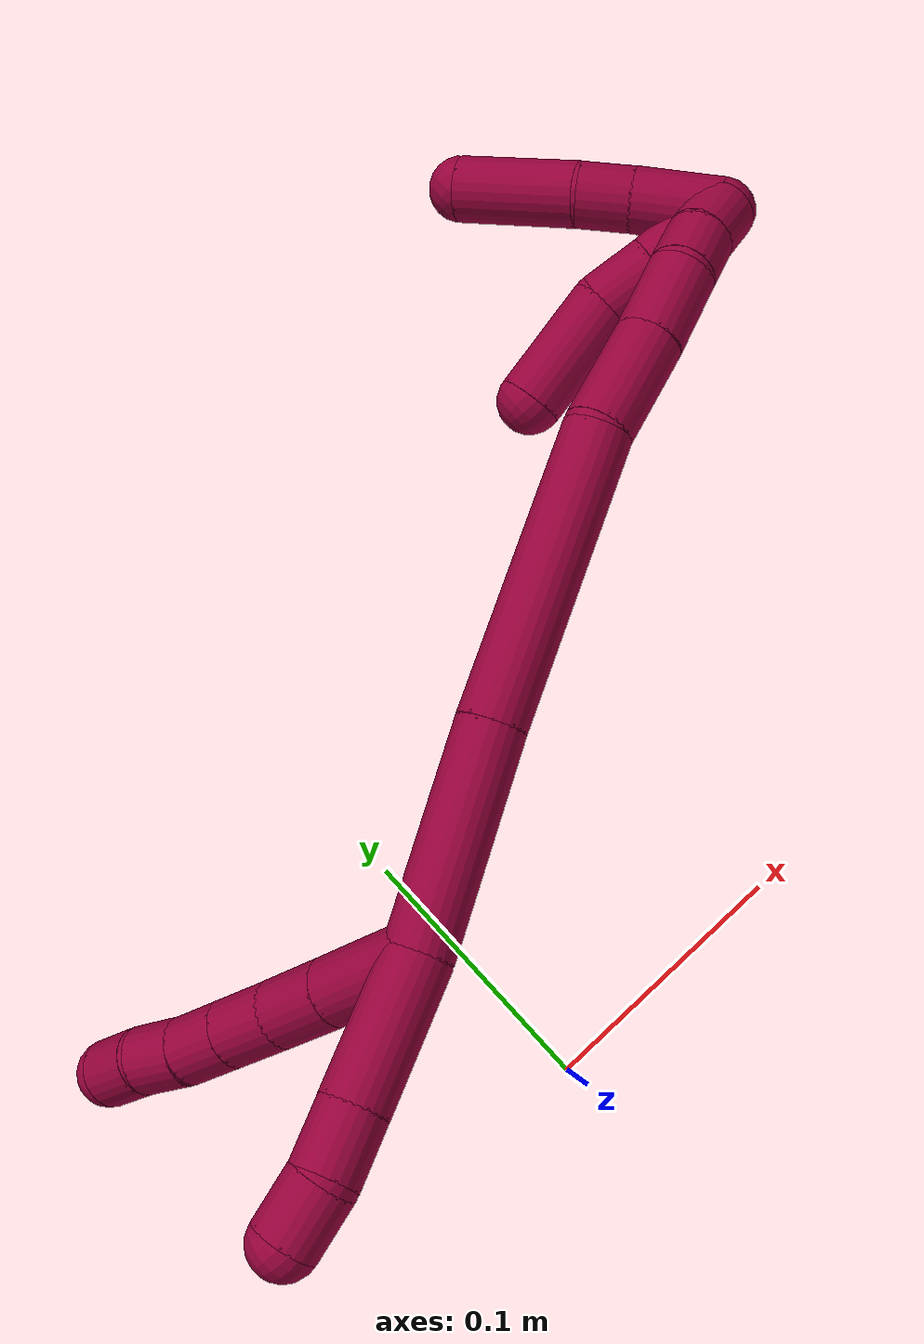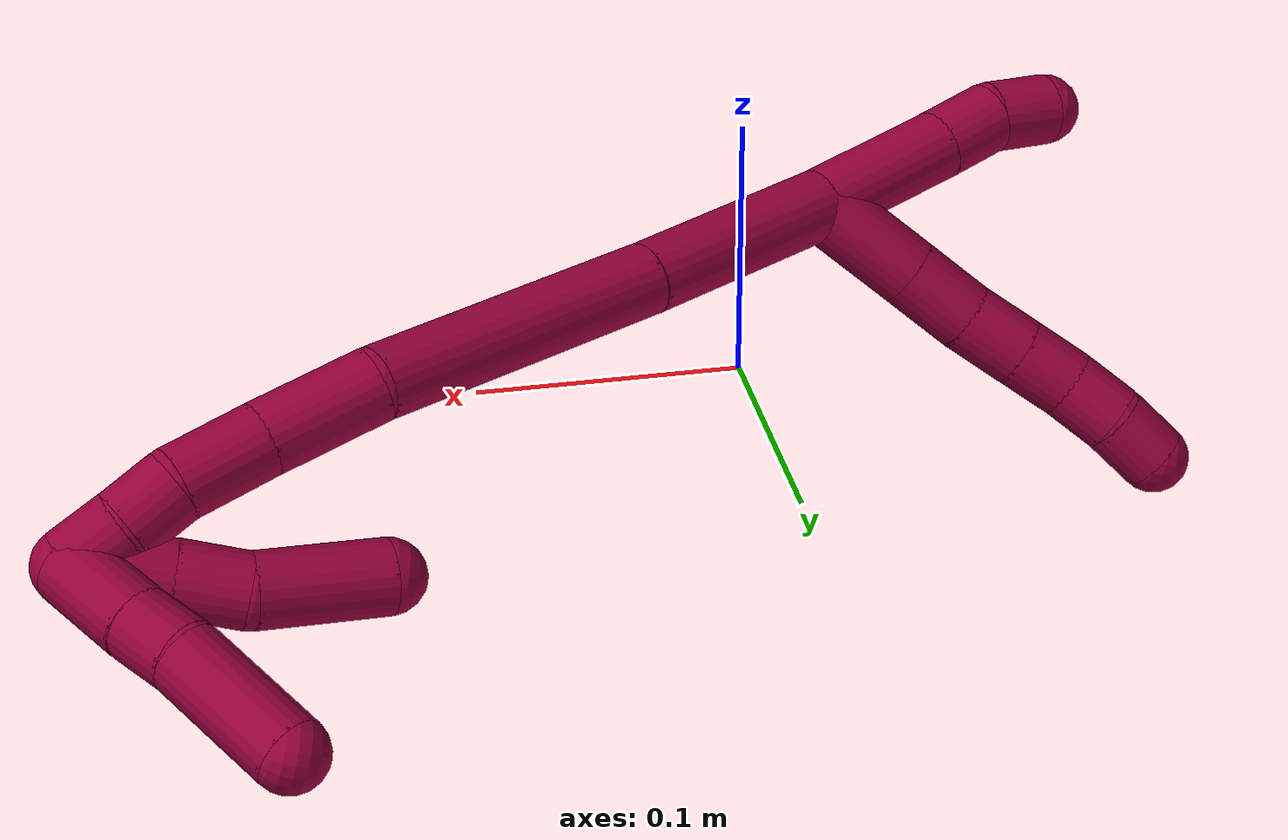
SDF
<sdf version="1.7">
 <world name="default">
  <model name="8">
   <static>0</static>
   <link name="8">
    <collision name="collision-cylinder-e_1_2_8">
     <pose>0.002793 -0.008185 -0.017618 2.70669 0.142807 0.626155</pose>
     <geometry><cylinder><radius>0.0125</radius><length>0.039252</length></cylinder></geometry>
     <surface>
      <friction><ode><mu>1.16</mu><mu2>1.16</mu2><slip1>0</slip1><slip2>0</slip2></ode></friction>
      <contact><ode><kp>1e+06</kp><kd>1</kd><max_vel>0</max_vel><min_depth>0.001</min_depth></ode></contact>
     </surface>
    </collision>
    <visual name="visual-cylinder-e_1_2_8">
     <pose>0.002793 -0.008185 -0.017618 2.70669 0.142807 0.626155</pose>
     <geometry><cylinder><radius>0.0125</radius><length>0.039252</length></cylinder></geometry>
     <material><ambient>0.584314 0 0.227451 1</ambient></material>
    </visual>
    <collision name="collision-cylinder-e_2_8_9">
     <pose>0.007468 -0.021819 -0.046798 2.70111 0.146186 0.632219</pose>
     <geometry><cylinder><radius>0.0125</radius><length>0.02584</length></cylinder></geometry>
     <surface>
      <friction><ode><mu>1.16</mu><mu2>1.16</mu2><slip1>0</slip1><slip2>0</slip2></ode></friction>
      <contact><ode><kp>1e+06</kp><kd>1</kd><max_vel>0</max_vel><min_depth>0.001</min_depth></ode></contact>
     </surface>
    </collision>
    <visual name="visual-cylinder-e_2_8_9">
     <pose>0.007468 -0.021819 -0.046798 2.70111 0.146186 0.632219</pose>
     <geometry><cylinder><radius>0.0125</radius><length>0.02584</length></cylinder></geometry>
     <material><ambient>0.584314 0 0.227451 1</ambient></material>
    </visual>
    <collision name="collision-cylinder-e_3_9_10">
     <pose>0.011588 -0.031319 -0.068866 2.7737 0.196135 0.972856</pose>
     <geometry><cylinder><radius>0.0125</radius><length>0.022959</length></cylinder></geometry>
     <surface>
      <friction><ode><mu>1.16</mu><mu2>1.16</mu2><slip1>0</slip1><slip2>0</slip2></ode></friction>
      <contact><ode><kp>1e+06</kp><kd>1</kd><max_vel>0</max_vel><min_depth>0.001</min_depth></ode></contact>
     </surface>
    </collision>
    <visual name="visual-cylinder-e_3_9_10">
     <pose>0.011588 -0.031319 -0.068866 2.7737 0.196135 0.972856</pose>
     <geometry><cylinder><radius>0.0125</radius><length>0.022959</length></cylinder></geometry>
     <material><ambient>0.584314 0 0.227451 1</ambient></material>
    </visual>
    <collision name="collision-cylinder-e_4_10_11">
     <pose>0.015871 -0.039061 -0.088979 2.77464 0.196207 0.975322</pose>
     <geometry><cylinder><radius>0.0125</radius><length>0.020988</length></cylinder></geometry>
     <surface>
      <friction><ode><mu>1.16</mu><mu2>1.16</mu2><slip1>0</slip1><slip2>0</slip2></ode></friction>
      <contact><ode><kp>1e+06</kp><kd>1</kd><max_vel>0</max_vel><min_depth>0.001</min_depth></ode></contact>
     </surface>
    </collision>
    <visual name="visual-cylinder-e_4_10_11">
     <pose>0.015871 -0.039061 -0.088979 2.77464 0.196207 0.975322</pose>
     <geometry><cylinder><radius>0.0125</radius><length>0.020988</length></cylinder></geometry>
     <material><ambient>0.584314 0 0.227451 1</ambient></material>
    </visual>
    <collision name="collision-cylinder-e_5_11_12">
     <pose>0.020895 -0.046925 -0.107369 2.69815 0.297283 1.17269</pose>
     <geometry><cylinder><radius>0.0125</radius><length>0.020337</length></cylinder></geometry>
     <surface>
      <friction><ode><mu>1.16</mu><mu2>1.16</mu2><slip1>0</slip1><slip2>0</slip2></ode></friction>
      <contact><ode><kp>1e+06</kp><kd>1</kd><max_vel>0</max_vel><min_depth>0.001</min_depth></ode></contact>
     </surface>
    </collision>
    <visual name="visual-cylinder-e_5_11_12">
     <pose>0.020895 -0.046925 -0.107369 2.69815 0.297283 1.17269</pose>
     <geometry><cylinder><radius>0.0125</radius><length>0.020337</length></cylinder></geometry>
     <material><ambient>0.584314 0 0.227451 1</ambient></material>
    </visual>
    <collision name="collision-cylinder-e_6_12_6">
     <pose>0.02519 -0.056307 -0.124952 2.60707 0.128018 0.4599</pose>
     <geometry><cylinder><radius>0.0125</radius><length>0.020624</length></cylinder></geometry>
     <surface>
      <friction><ode><mu>1.16</mu><mu2>1.16</mu2><slip1>0</slip1><slip2>0</slip2></ode></friction>
      <contact><ode><kp>1e+06</kp><kd>1</kd><max_vel>0</max_vel><min_depth>0.001</min_depth></ode></contact>
     </surface>
    </collision>
    <visual name="visual-cylinder-e_6_12_6">
     <pose>0.02519 -0.056307 -0.124952 2.60707 0.128018 0.4599</pose>
     <geometry><cylinder><radius>0.0125</radius><length>0.020624</length></cylinder></geometry>
     <material><ambient>0.584314 0 0.227451 1</ambient></material>
    </visual>
    <collision name="collision-cylinder-e_1_2_13">
     <pose>-0.007594 0.013681 -0.021349 -2.57171 -0.290998 0.927721</pose>
     <geometry><cylinder><radius>0.0125</radius><length>0.052939</length></cylinder></geometry>
     <surface>
      <friction><ode><mu>1.16</mu><mu2>1.16</mu2><slip1>0</slip1><slip2>0</slip2></ode></friction>
      <contact><ode><kp>1e+06</kp><kd>1</kd><max_vel>0</max_vel><min_depth>0.001</min_depth></ode></contact>
     </surface>
    </collision>
    <visual name="visual-cylinder-e_1_2_13">
     <pose>-0.007594 0.013681 -0.021349 -2.57171 -0.290998 0.927721</pose>
     <geometry><cylinder><radius>0.0125</radius><length>0.052939</length></cylinder></geometry>
     <material><ambient>0.584314 0 0.227451 1</ambient></material>
    </visual>
    <collision name="collision-cylinder-e_2_13_14">
     <pose>-0.018496 0.033919 -0.052254 -2.54015 -0.278012 0.847594</pose>
     <geometry><cylinder><radius>0.0125</radius><length>0.024105</length></cylinder></geometry>
     <surface>
      <friction><ode><mu>1.16</mu><mu2>1.16</mu2><slip1>0</slip1><slip2>0</slip2></ode></friction>
      <contact><ode><kp>1e+06</kp><kd>1</kd><max_vel>0</max_vel><min_depth>0.001</min_depth></ode></contact>
     </surface>
    </collision>
    <visual name="visual-cylinder-e_2_13_14">
     <pose>-0.018496 0.033919 -0.052254 -2.54015 -0.278012 0.847594</pose>
     <geometry><cylinder><radius>0.0125</radius><length>0.024105</length></cylinder></geometry>
     <material><ambient>0.584314 0 0.227451 1</ambient></material>
    </visual>
    <collision name="collision-cylinder-e_3_14_5">
     <pose>-0.024138 0.043798 -0.072547 -2.84159 -0.204785 1.19416</pose>
     <geometry><cylinder><radius>0.0125</radius><length>0.022957</length></cylinder></geometry>
     <surface>
      <friction><ode><mu>1.16</mu><mu2>1.16</mu2><slip1>0</slip1><slip2>0</slip2></ode></friction>
      <contact><ode><kp>1e+06</kp><kd>1</kd><max_vel>0</max_vel><min_depth>0.001</min_depth></ode></contact>
     </surface>
    </collision>
    <visual name="visual-cylinder-e_3_14_5">
     <pose>-0.024138 0.043798 -0.072547 -2.84159 -0.204785 1.19416</pose>
     <geometry><cylinder><radius>0.0125</radius><length>0.022957</length></cylinder></geometry>
     <material><ambient>0.584314 0 0.227451 1</ambient></material>
    </visual>
    <collision name="collision-cylinder-e_1_2_15">
     <pose>0.016311 -0.016516 0.032475 0.470478 0.420935 0.102315</pose>
     <geometry><cylinder><radius>0.0125</radius><length>0.079836</length></cylinder></geometry>
     <surface>
      <friction><ode><mu>1.16</mu><mu2>1.16</mu2><slip1>0</slip1><slip2>0</slip2></ode></friction>
      <contact><ode><kp>1e+06</kp><kd>1</kd><max_vel>0</max_vel><min_depth>0.001</min_depth></ode></contact>
     </surface>
    </collision>
    <visual name="visual-cylinder-e_1_2_15">
     <pose>0.016311 -0.016516 0.032475 0.470478 0.420935 0.102315</pose>
     <geometry><cylinder><radius>0.0125</radius><length>0.079836</length></cylinder></geometry>
     <material><ambient>0.584314 0 0.227451 1</ambient></material>
    </visual>
    <collision name="collision-cylinder-e_2_15_16">
     <pose>0.05304 -0.054993 0.110267 0.451272 0.385195 0.089469</pose>
     <geometry><cylinder><radius>0.0125</radius><length>0.10868</length></cylinder></geometry>
     <surface>
      <friction><ode><mu>1.16</mu><mu2>1.16</mu2><slip1>0</slip1><slip2>0</slip2></ode></friction>
      <contact><ode><kp>1e+06</kp><kd>1</kd><max_vel>0</max_vel><min_depth>0.001</min_depth></ode></contact>
     </surface>
    </collision>
    <visual name="visual-cylinder-e_2_15_16">
     <pose>0.05304 -0.054993 0.110267 0.451272 0.385195 0.089469</pose>
     <geometry><cylinder><radius>0.0125</radius><length>0.10868</length></cylinder></geometry>
     <material><ambient>0.584314 0 0.227451 1</ambient></material>
    </visual>
    <collision name="collision-cylinder-e_3_16_17">
     <pose>0.077102 -0.08804 0.171972 0.5947 0.182145 0.055956</pose>
     <geometry><cylinder><radius>0.0125</radius><length>0.040236</length></cylinder></geometry>
     <surface>
      <friction><ode><mu>1.16</mu><mu2>1.16</mu2><slip1>0</slip1><slip2>0</slip2></ode></friction>
      <contact><ode><kp>1e+06</kp><kd>1</kd><max_vel>0</max_vel><min_depth>0.001</min_depth></ode></contact>
     </surface>
    </collision>
    <visual name="visual-cylinder-e_3_16_17">
     <pose>0.077102 -0.08804 0.171972 0.5947 0.182145 0.055956</pose>
     <geometry><cylinder><radius>0.0125</radius><length>0.040236</length></cylinder></geometry>
     <material><ambient>0.584314 0 0.227451 1</ambient></material>
    </visual>
    <collision name="collision-cylinder-e_4_17_18">
     <pose>0.084241 -0.107768 0.200721 0.610223 0.227693 0.071991</pose>
     <geometry><cylinder><radius>0.0125</radius><length>0.030965</length></cylinder></geometry>
     <surface>
      <friction><ode><mu>1.16</mu><mu2>1.16</mu2><slip1>0</slip1><slip2>0</slip2></ode></friction>
      <contact><ode><kp>1e+06</kp><kd>1</kd><max_vel>0</max_vel><min_depth>0.001</min_depth></ode></contact>
     </surface>
    </collision>
    <visual name="visual-cylinder-e_4_17_18">
     <pose>0.084241 -0.107768 0.200721 0.610223 0.227693 0.071991</pose>
     <geometry><cylinder><radius>0.0125</radius><length>0.030965</length></cylinder></geometry>
     <material><ambient>0.584314 0 0.227451 1</ambient></material>
    </visual>
    <collision name="collision-cylinder-e_5_18_19">
     <pose>0.089097 -0.123806 0.219715 0.839695 0.136169 0.06086</pose>
     <geometry><cylinder><radius>0.0125</radius><length>0.020053</length></cylinder></geometry>
     <surface>
      <friction><ode><mu>1.16</mu><mu2>1.16</mu2><slip1>0</slip1><slip2>0</slip2></ode></friction>
      <contact><ode><kp>1e+06</kp><kd>1</kd><max_vel>0</max_vel><min_depth>0.001</min_depth></ode></contact>
     </surface>
    </collision>
    <visual name="visual-cylinder-e_5_18_19">
     <pose>0.089097 -0.123806 0.219715 0.839695 0.136169 0.06086</pose>
     <geometry><cylinder><radius>0.0125</radius><length>0.020053</length></cylinder></geometry>
     <material><ambient>0.584314 0 0.227451 1</ambient></material>
    </visual>
    <collision name="collision-cylinder-e_6_19_1">
     <pose>0.090417 -0.13876 0.233069 0.843983 -0.004021 -0.001805</pose>
     <geometry><cylinder><radius>0.0125</radius><length>0.02023</length></cylinder></geometry>
     <surface>
      <friction><ode><mu>1.16</mu><mu2>1.16</mu2><slip1>0</slip1><slip2>0</slip2></ode></friction>
      <contact><ode><kp>1e+06</kp><kd>1</kd><max_vel>0</max_vel><min_depth>0.001</min_depth></ode></contact>
     </surface>
    </collision>
    <visual name="visual-cylinder-e_6_19_1">
     <pose>0.090417 -0.13876 0.233069 0.843983 -0.004021 -0.001805</pose>
     <geometry><cylinder><radius>0.0125</radius><length>0.02023</length></cylinder></geometry>
     <material><ambient>0.584314 0 0.227451 1</ambient></material>
    </visual>
    <collision name="collision-cylinder-e_1_1_20">
     <pose>0.102804 -0.150319 0.229723 2.76336 0.85386 2.34506</pose>
     <geometry><cylinder><radius>0.0125</radius><length>0.032973</length></cylinder></geometry>
     <surface>
      <friction><ode><mu>1.16</mu><mu2>1.16</mu2><slip1>0</slip1><slip2>0</slip2></ode></friction>
      <contact><ode><kp>1e+06</kp><kd>1</kd><max_vel>0</max_vel><min_depth>0.001</min_depth></ode></contact>
     </surface>
    </collision>
    <visual name="visual-cylinder-e_1_1_20">
     <pose>0.102804 -0.150319 0.229723 2.76336 0.85386 2.34506</pose>
     <geometry><cylinder><radius>0.0125</radius><length>0.032973</length></cylinder></geometry>
     <material><ambient>0.584314 0 0.227451 1</ambient></material>
    </visual>
    <collision name="collision-cylinder-e_2_20_21">
     <pose>0.122885 -0.156203 0.213027 2.86485 0.837731 2.53529</pose>
     <geometry><cylinder><radius>0.0125</radius><length>0.020597</length></cylinder></geometry>
     <surface>
      <friction><ode><mu>1.16</mu><mu2>1.16</mu2><slip1>0</slip1><slip2>0</slip2></ode></friction>
      <contact><ode><kp>1e+06</kp><kd>1</kd><max_vel>0</max_vel><min_depth>0.001</min_depth></ode></contact>
     </surface>
    </collision>
    <visual name="visual-cylinder-e_2_20_21">
     <pose>0.122885 -0.156203 0.213027 2.86485 0.837731 2.53529</pose>
     <geometry><cylinder><radius>0.0125</radius><length>0.020597</length></cylinder></geometry>
     <material><ambient>0.584314 0 0.227451 1</ambient></material>
    </visual>
    <collision name="collision-cylinder-e_3_21_4">
     <pose>0.146395 -0.165674 0.191235 2.67755 0.751939 2.06288</pose>
     <geometry><cylinder><radius>0.0125</radius><length>0.04643</length></cylinder></geometry>
     <surface>
      <friction><ode><mu>1.16</mu><mu2>1.16</mu2><slip1>0</slip1><slip2>0</slip2></ode></friction>
      <contact><ode><kp>1e+06</kp><kd>1</kd><max_vel>0</max_vel><min_depth>0.001</min_depth></ode></contact>
     </surface>
    </collision>
    <visual name="visual-cylinder-e_3_21_4">
     <pose>0.146395 -0.165674 0.191235 2.67755 0.751939 2.06288</pose>
     <geometry><cylinder><radius>0.0125</radius><length>0.04643</length></cylinder></geometry>
     <material><ambient>0.584314 0 0.227451 1</ambient></material>
    </visual>
    <collision name="collision-cylinder-e_1_1_22">
     <pose>0.091657 -0.145194 0.224143 -3.06981 0.081431 -1.69665</pose>
     <geometry><cylinder><radius>0.0125</radius><length>0.031478</length></cylinder></geometry>
     <surface>
      <friction><ode><mu>1.16</mu><mu2>1.16</mu2><slip1>0</slip1><slip2>0</slip2></ode></friction>
      <contact><ode><kp>1e+06</kp><kd>1</kd><max_vel>0</max_vel><min_depth>0.001</min_depth></ode></contact>
     </surface>
    </collision>
    <visual name="visual-cylinder-e_1_1_22">
     <pose>0.091657 -0.145194 0.224143 -3.06981 0.081431 -1.69665</pose>
     <geometry><cylinder><radius>0.0125</radius><length>0.031478</length></cylinder></geometry>
     <material><ambient>0.584314 0 0.227451 1</ambient></material>
    </visual>
    <collision name="collision-cylinder-e_2_22_23">
     <pose>0.094507 -0.143878 0.196768 -3.12534 0.133082 -2.89885</pose>
     <geometry><cylinder><radius>0.0125</radius><length>0.02367</length></cylinder></geometry>
     <surface>
      <friction><ode><mu>1.16</mu><mu2>1.16</mu2><slip1>0</slip1><slip2>0</slip2></ode></friction>
      <contact><ode><kp>1e+06</kp><kd>1</kd><max_vel>0</max_vel><min_depth>0.001</min_depth></ode></contact>
     </surface>
    </collision>
    <visual name="visual-cylinder-e_2_22_23">
     <pose>0.094507 -0.143878 0.196768 -3.12534 0.133082 -2.89885</pose>
     <geometry><cylinder><radius>0.0125</radius><length>0.02367</length></cylinder></geometry>
     <material><ambient>0.584314 0 0.227451 1</ambient></material>
    </visual>
    <collision name="collision-cylinder-e_3_23_3">
     <pose>0.093085 -0.138571 0.163411 -2.90929 -0.133829 1.04272</pose>
     <geometry><cylinder><radius>0.0125</radius><length>0.044852</length></cylinder></geometry>
     <surface>
      <friction><ode><mu>1.16</mu><mu2>1.16</mu2><slip1>0</slip1><slip2>0</slip2></ode></friction>
      <contact><ode><kp>1e+06</kp><kd>1</kd><max_vel>0</max_vel><min_depth>0.001</min_depth></ode></contact>
     </surface>
    </collision>
    <visual name="visual-cylinder-e_3_23_3">
     <pose>0.093085 -0.138571 0.163411 -2.90929 -0.133829 1.04272</pose>
     <geometry><cylinder><radius>0.0125</radius><length>0.044852</length></cylinder></geometry>
     <material><ambient>0.584314 0 0.227451 1</ambient></material>
    </visual>
    <collision name="collision-sphere-3">
     <pose>0.090093 -0.133454 0.141783 0 -0 0</pose>
     <geometry><sphere><radius>0.0125</radius></sphere></geometry>
     <surface>
      <friction><ode><mu>1.16</mu><mu2>1.16</mu2><slip1>0</slip1><slip2>0</slip2></ode></friction>
      <contact><ode><kp>1e+06</kp><kd>1</kd><max_vel>0</max_vel><min_depth>0.001</min_depth></ode></contact>
     </surface>
    </collision>
    <visual name="visual-sphere-3">
     <pose>0.090093 -0.133454 0.141783 0 -0 0</pose>
     <geometry><sphere><radius>0.0125</radius></sphere></geometry>
     <material><ambient>0.584314 0 0.227451 1</ambient></material>
    </visual>
    <collision name="collision-sphere-23">
     <pose>0.096078 -0.143687 0.18504 0 -0 0</pose>
     <geometry><sphere><radius>0.0125</radius></sphere></geometry>
     <surface>
      <friction><ode><mu>1.16</mu><mu2>1.16</mu2><slip1>0</slip1><slip2>0</slip2></ode></friction>
      <contact><ode><kp>1e+06</kp><kd>1</kd><max_vel>0</max_vel><min_depth>0.001</min_depth></ode></contact>
     </surface>
    </collision>
    <visual name="visual-sphere-23">
     <pose>0.096078 -0.143687 0.18504 0 -0 0</pose>
     <geometry><sphere><radius>0.0125</radius></sphere></geometry>
     <material><ambient>0.584314 0 0.227451 1</ambient></material>
    </visual>
    <collision name="collision-sphere-22">
     <pose>0.092937 -0.144069 0.208497 0 -0 0</pose>
     <geometry><sphere><radius>0.0125</radius></sphere></geometry>
     <surface>
      <friction><ode><mu>1.16</mu><mu2>1.16</mu2><slip1>0</slip1><slip2>0</slip2></ode></friction>
      <contact><ode><kp>1e+06</kp><kd>1</kd><max_vel>0</max_vel><min_depth>0.001</min_depth></ode></contact>
     </surface>
    </collision>
    <visual name="visual-sphere-22">
     <pose>0.092937 -0.144069 0.208497 0 -0 0</pose>
     <geometry><sphere><radius>0.0125</radius></sphere></geometry>
     <material><ambient>0.584314 0 0.227451 1</ambient></material>
    </visual>
    <collision name="collision-sphere-4">
     <pose>0.162253 -0.173263 0.176073 0 -0 0</pose>
     <geometry><sphere><radius>0.0125</radius></sphere></geometry>
     <surface>
      <friction><ode><mu>1.16</mu><mu2>1.16</mu2><slip1>0</slip1><slip2>0</slip2></ode></friction>
      <contact><ode><kp>1e+06</kp><kd>1</kd><max_vel>0</max_vel><min_depth>0.001</min_depth></ode></contact>
     </surface>
    </collision>
    <visual name="visual-sphere-4">
     <pose>0.162253 -0.173263 0.176073 0 -0 0</pose>
     <geometry><sphere><radius>0.0125</radius></sphere></geometry>
     <material><ambient>0.584314 0 0.227451 1</ambient></material>
    </visual>
    <collision name="collision-sphere-21">
     <pose>0.130538 -0.158085 0.206398 0 -0 0</pose>
     <geometry><sphere><radius>0.0125</radius></sphere></geometry>
     <surface>
      <friction><ode><mu>1.16</mu><mu2>1.16</mu2><slip1>0</slip1><slip2>0</slip2></ode></friction>
      <contact><ode><kp>1e+06</kp><kd>1</kd><max_vel>0</max_vel><min_depth>0.001</min_depth></ode></contact>
     </surface>
    </collision>
    <visual name="visual-sphere-21">
     <pose>0.130538 -0.158085 0.206398 0 -0 0</pose>
     <geometry><sphere><radius>0.0125</radius></sphere></geometry>
     <material><ambient>0.584314 0 0.227451 1</ambient></material>
    </visual>
    <collision name="collision-sphere-20">
     <pose>0.115232 -0.15432 0.219656 0 -0 0</pose>
     <geometry><sphere><radius>0.0125</radius></sphere></geometry>
     <surface>
      <friction><ode><mu>1.16</mu><mu2>1.16</mu2><slip1>0</slip1><slip2>0</slip2></ode></friction>
      <contact><ode><kp>1e+06</kp><kd>1</kd><max_vel>0</max_vel><min_depth>0.001</min_depth></ode></contact>
     </surface>
    </collision>
    <visual name="visual-sphere-20">
     <pose>0.115232 -0.15432 0.219656 0 -0 0</pose>
     <geometry><sphere><radius>0.0125</radius></sphere></geometry>
     <material><ambient>0.584314 0 0.227451 1</ambient></material>
    </visual>
    <collision name="collision-sphere-12">
     <pose>0.023873 -0.051096 -0.116151 0 -0 0</pose>
     <geometry><sphere><radius>0.0125</radius></sphere></geometry>
     <surface>
      <friction><ode><mu>1.16</mu><mu2>1.16</mu2><slip1>0</slip1><slip2>0</slip2></ode></friction>
      <contact><ode><kp>1e+06</kp><kd>1</kd><max_vel>0</max_vel><min_depth>0.001</min_depth></ode></contact>
     </surface>
    </collision>
    <visual name="visual-sphere-12">
     <pose>0.023873 -0.051096 -0.116151 0 -0 0</pose>
     <geometry><sphere><radius>0.0125</radius></sphere></geometry>
     <material><ambient>0.584314 0 0.227451 1</ambient></material>
    </visual>
    <collision name="collision-sphere-11">
     <pose>0.017916 -0.042754 -0.098587 0 -0 0</pose>
     <geometry><sphere><radius>0.0125</radius></sphere></geometry>
     <surface>
      <friction><ode><mu>1.16</mu><mu2>1.16</mu2><slip1>0</slip1><slip2>0</slip2></ode></friction>
      <contact><ode><kp>1e+06</kp><kd>1</kd><max_vel>0</max_vel><min_depth>0.001</min_depth></ode></contact>
     </surface>
    </collision>
    <visual name="visual-sphere-11">
     <pose>0.017916 -0.042754 -0.098587 0 -0 0</pose>
     <geometry><sphere><radius>0.0125</radius></sphere></geometry>
     <material><ambient>0.584314 0 0.227451 1</ambient></material>
    </visual>
    <collision name="collision-sphere-10">
     <pose>0.013825 -0.035368 -0.079372 0 -0 0</pose>
     <geometry><sphere><radius>0.0125</radius></sphere></geometry>
     <surface>
      <friction><ode><mu>1.16</mu><mu2>1.16</mu2><slip1>0</slip1><slip2>0</slip2></ode></friction>
      <contact><ode><kp>1e+06</kp><kd>1</kd><max_vel>0</max_vel><min_depth>0.001</min_depth></ode></contact>
     </surface>
    </collision>
    <visual name="visual-sphere-10">
     <pose>0.013825 -0.035368 -0.079372 0 -0 0</pose>
     <geometry><sphere><radius>0.0125</radius></sphere></geometry>
     <material><ambient>0.584314 0 0.227451 1</ambient></material>
    </visual>
    <collision name="collision-sphere-9">
     <pose>0.00935 -0.027269 -0.05836 0 -0 0</pose>
     <geometry><sphere><radius>0.0125</radius></sphere></geometry>
     <surface>
      <friction><ode><mu>1.16</mu><mu2>1.16</mu2><slip1>0</slip1><slip2>0</slip2></ode></friction>
      <contact><ode><kp>1e+06</kp><kd>1</kd><max_vel>0</max_vel><min_depth>0.001</min_depth></ode></contact>
     </surface>
    </collision>
    <visual name="visual-sphere-9">
     <pose>0.00935 -0.027269 -0.05836 0 -0 0</pose>
     <geometry><sphere><radius>0.0125</radius></sphere></geometry>
     <material><ambient>0.584314 0 0.227451 1</ambient></material>
    </visual>
    <collision name="collision-sphere-2">
     <geometry><sphere><radius>0.0125</radius></sphere></geometry>
     <surface>
      <friction><ode><mu>1.16</mu><mu2>1.16</mu2><slip1>0</slip1><slip2>0</slip2></ode></friction>
      <contact><ode><kp>1e+06</kp><kd>1</kd><max_vel>0</max_vel><min_depth>0.001</min_depth></ode></contact>
     </surface>
    </collision>
    <visual name="visual-sphere-2">
     <geometry><sphere><radius>0.0125</radius></sphere></geometry>
     <material><ambient>0.584314 0 0.227451 1</ambient></material>
    </visual>
    <collision name="collision-sphere-19">
     <pose>0.090458 -0.131201 0.226347 0 -0 0</pose>
     <geometry><sphere><radius>0.0125</radius></sphere></geometry>
     <surface>
      <friction><ode><mu>1.16</mu><mu2>1.16</mu2><slip1>0</slip1><slip2>0</slip2></ode></friction>
      <contact><ode><kp>1e+06</kp><kd>1</kd><max_vel>0</max_vel><min_depth>0.001</min_depth></ode></contact>
     </surface>
    </collision>
    <visual name="visual-sphere-19">
     <pose>0.090458 -0.131201 0.226347 0 -0 0</pose>
     <geometry><sphere><radius>0.0125</radius></sphere></geometry>
     <material><ambient>0.584314 0 0.227451 1</ambient></material>
    </visual>
    <collision name="collision-sphere-8">
     <pose>0.005586 -0.016369 -0.035236 0 -0 0</pose>
     <geometry><sphere><radius>0.0125</radius></sphere></geometry>
     <surface>
      <friction><ode><mu>1.16</mu><mu2>1.16</mu2><slip1>0</slip1><slip2>0</slip2></ode></friction>
      <contact><ode><kp>1e+06</kp><kd>1</kd><max_vel>0</max_vel><min_depth>0.001</min_depth></ode></contact>
     </surface>
    </collision>
    <visual name="visual-sphere-8">
     <pose>0.005586 -0.016369 -0.035236 0 -0 0</pose>
     <geometry><sphere><radius>0.0125</radius></sphere></geometry>
     <material><ambient>0.584314 0 0.227451 1</ambient></material>
    </visual>
    <collision name="collision-sphere-6">
     <pose>0.026506 -0.061517 -0.133753 0 -0 0</pose>
     <geometry><sphere><radius>0.0125</radius></sphere></geometry>
     <surface>
      <friction><ode><mu>1.16</mu><mu2>1.16</mu2><slip1>0</slip1><slip2>0</slip2></ode></friction>
      <contact><ode><kp>1e+06</kp><kd>1</kd><max_vel>0</max_vel><min_depth>0.001</min_depth></ode></contact>
     </surface>
    </collision>
    <visual name="visual-sphere-6">
     <pose>0.026506 -0.061517 -0.133753 0 -0 0</pose>
     <geometry><sphere><radius>0.0125</radius></sphere></geometry>
     <material><ambient>0.584314 0 0.227451 1</ambient></material>
    </visual>
    <collision name="collision-sphere-13">
     <pose>-0.015189 0.027361 -0.042699 0 -0 0</pose>
     <geometry><sphere><radius>0.0125</radius></sphere></geometry>
     <surface>
      <friction><ode><mu>1.16</mu><mu2>1.16</mu2><slip1>0</slip1><slip2>0</slip2></ode></friction>
      <contact><ode><kp>1e+06</kp><kd>1</kd><max_vel>0</max_vel><min_depth>0.001</min_depth></ode></contact>
     </surface>
    </collision>
    <visual name="visual-sphere-13">
     <pose>-0.015189 0.027361 -0.042699 0 -0 0</pose>
     <geometry><sphere><radius>0.0125</radius></sphere></geometry>
     <material><ambient>0.584314 0 0.227451 1</ambient></material>
    </visual>
    <collision name="collision-sphere-14">
     <pose>-0.021804 0.040477 -0.06181 0 -0 0</pose>
     <geometry><sphere><radius>0.0125</radius></sphere></geometry>
     <surface>
      <friction><ode><mu>1.16</mu><mu2>1.16</mu2><slip1>0</slip1><slip2>0</slip2></ode></friction>
      <contact><ode><kp>1e+06</kp><kd>1</kd><max_vel>0</max_vel><min_depth>0.001</min_depth></ode></contact>
     </surface>
    </collision>
    <visual name="visual-sphere-14">
     <pose>-0.021804 0.040477 -0.06181 0 -0 0</pose>
     <geometry><sphere><radius>0.0125</radius></sphere></geometry>
     <material><ambient>0.584314 0 0.227451 1</ambient></material>
    </visual>
    <collision name="collision-sphere-5">
     <pose>-0.026472 0.047119 -0.083283 0 -0 0</pose>
     <geometry><sphere><radius>0.0125</radius></sphere></geometry>
     <surface>
      <friction><ode><mu>1.16</mu><mu2>1.16</mu2><slip1>0</slip1><slip2>0</slip2></ode></friction>
      <contact><ode><kp>1e+06</kp><kd>1</kd><max_vel>0</max_vel><min_depth>0.001</min_depth></ode></contact>
     </surface>
    </collision>
    <visual name="visual-sphere-5">
     <pose>-0.026472 0.047119 -0.083283 0 -0 0</pose>
     <geometry><sphere><radius>0.0125</radius></sphere></geometry>
     <material><ambient>0.584314 0 0.227451 1</ambient></material>
    </visual>
    <collision name="collision-sphere-15">
     <pose>0.032622 -0.033032 0.06495 0 -0 0</pose>
     <geometry><sphere><radius>0.0125</radius></sphere></geometry>
     <surface>
      <friction><ode><mu>1.16</mu><mu2>1.16</mu2><slip1>0</slip1><slip2>0</slip2></ode></friction>
      <contact><ode><kp>1e+06</kp><kd>1</kd><max_vel>0</max_vel><min_depth>0.001</min_depth></ode></contact>
     </surface>
    </collision>
    <visual name="visual-sphere-15">
     <pose>0.032622 -0.033032 0.06495 0 -0 0</pose>
     <geometry><sphere><radius>0.0125</radius></sphere></geometry>
     <material><ambient>0.584314 0 0.227451 1</ambient></material>
    </visual>
    <collision name="collision-sphere-16">
     <pose>0.073458 -0.076955 0.155584 0 -0 0</pose>
     <geometry><sphere><radius>0.0125</radius></sphere></geometry>
     <surface>
      <friction><ode><mu>1.16</mu><mu2>1.16</mu2><slip1>0</slip1><slip2>0</slip2></ode></friction>
      <contact><ode><kp>1e+06</kp><kd>1</kd><max_vel>0</max_vel><min_depth>0.001</min_depth></ode></contact>
     </surface>
    </collision>
    <visual name="visual-sphere-16">
     <pose>0.073458 -0.076955 0.155584 0 -0 0</pose>
     <geometry><sphere><radius>0.0125</radius></sphere></geometry>
     <material><ambient>0.584314 0 0.227451 1</ambient></material>
    </visual>
    <collision name="collision-sphere-17">
     <pose>0.080746 -0.099125 0.188361 0 -0 0</pose>
     <geometry><sphere><radius>0.0125</radius></sphere></geometry>
     <surface>
      <friction><ode><mu>1.16</mu><mu2>1.16</mu2><slip1>0</slip1><slip2>0</slip2></ode></friction>
      <contact><ode><kp>1e+06</kp><kd>1</kd><max_vel>0</max_vel><min_depth>0.001</min_depth></ode></contact>
     </surface>
    </collision>
    <visual name="visual-sphere-17">
     <pose>0.080746 -0.099125 0.188361 0 -0 0</pose>
     <geometry><sphere><radius>0.0125</radius></sphere></geometry>
     <material><ambient>0.584314 0 0.227451 1</ambient></material>
    </visual>
    <collision name="collision-sphere-18">
     <pose>0.087735 -0.116411 0.213082 0 -0 0</pose>
     <geometry><sphere><radius>0.0125</radius></sphere></geometry>
     <surface>
      <friction><ode><mu>1.16</mu><mu2>1.16</mu2><slip1>0</slip1><slip2>0</slip2></ode></friction>
      <contact><ode><kp>1e+06</kp><kd>1</kd><max_vel>0</max_vel><min_depth>0.001</min_depth></ode></contact>
     </surface>
    </collision>
    <visual name="visual-sphere-18">
     <pose>0.087735 -0.116411 0.213082 0 -0 0</pose>
     <geometry><sphere><radius>0.0125</radius></sphere></geometry>
     <material><ambient>0.584314 0 0.227451 1</ambient></material>
    </visual>
    <collision name="collision-sphere-1">
     <pose>0.090376 -0.146319 0.23979 0 -0 0</pose>
     <geometry><sphere><radius>0.0125</radius></sphere></geometry>
     <surface>
      <friction><ode><mu>1.16</mu><mu2>1.16</mu2><slip1>0</slip1><slip2>0</slip2></ode></friction>
      <contact><ode><kp>1e+06</kp><kd>1</kd><max_vel>0</max_vel><min_depth>0.001</min_depth></ode></contact>
     </surface>
    </collision>
    <visual name="visual-sphere-1">
     <pose>0.090376 -0.146319 0.23979 0 -0 0</pose>
     <geometry><sphere><radius>0.0125</radius></sphere></geometry>
     <material><ambient>0.584314 0 0.227451 1</ambient></material>
    </visual>
    <inertial>
     <pose>0.051803 -0.068685 0.083401 0 -0 0</pose>
     <mass>0.75</mass>
     <inertia><ixx>0.000239</ixx><ixy>0</ixy><ixz>0</ixz><iyy>0.000185</iyy><iyz>0</iyz><izz>-1e-05</izz></inertia>
    </inertial>
   </link>
   <pose>-0.012204 0.067489 0.100515 1.25883 -0.287326 1.64023</pose>
  </model>
 </world>
</sdf>
